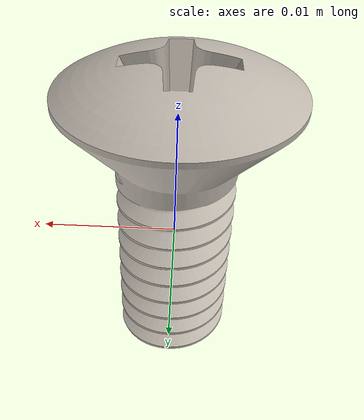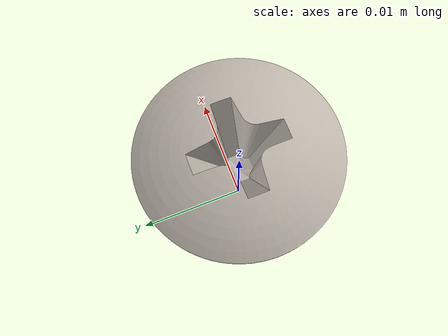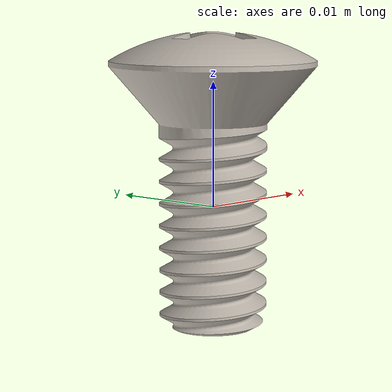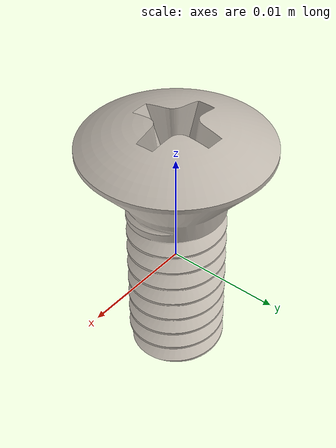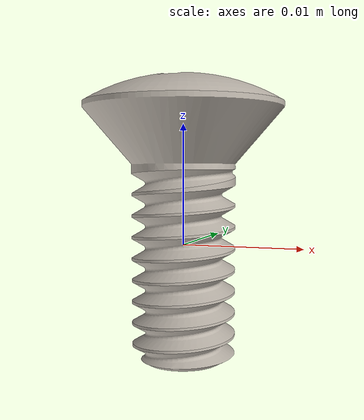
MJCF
<?xml version="1.0" encoding="UTF-8"?>
<mujoco model="ovalhead_machine_philips">
  <asset>
    <texture type="2d" file="textures/metal.png" name="metal_tex"/>
    <material name="metal_mat" texture="metal_tex" specular="0.9" shininess="0.7" reflectance="0.25"/>
    <mesh name="ovalhead_machine_philips_mesh" file="meshes/ovalhead_machine_philips.stl"/>
  </asset>
  <worldbody>
    <body name="ovalhead_machine_philips" pos="0 0 0">
      <freejoint name="ovalhead_machine_philips_joint"/>
      <geom name="ovalhead_machine_philips_visual" type="mesh" mesh="ovalhead_machine_philips_mesh"
            material="metal_mat" group="1" contype="0" conaffinity="0"/>
      <geom name="ovalhead_machine_philips_col" type="cylinder" group="3"
            size="0.00827763 0.0118408"
            pos="0 0 0.00205721" quat="1 0 0 0"
            mass="0.001" friction="1.0 0.05 0.001" condim="4"/>
    </body>
  </worldbody>
</mujoco>
